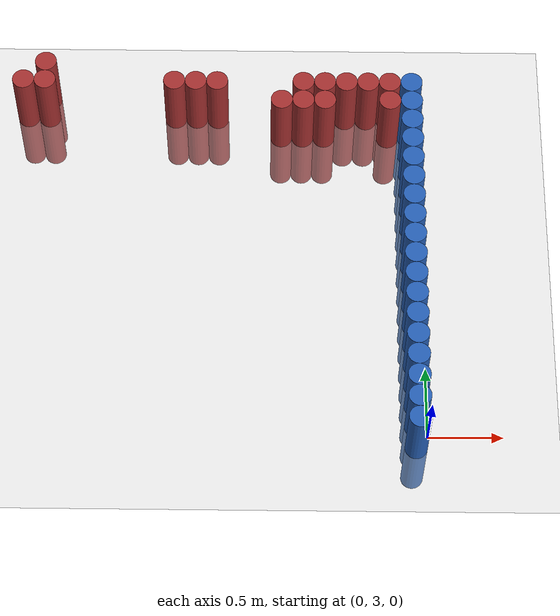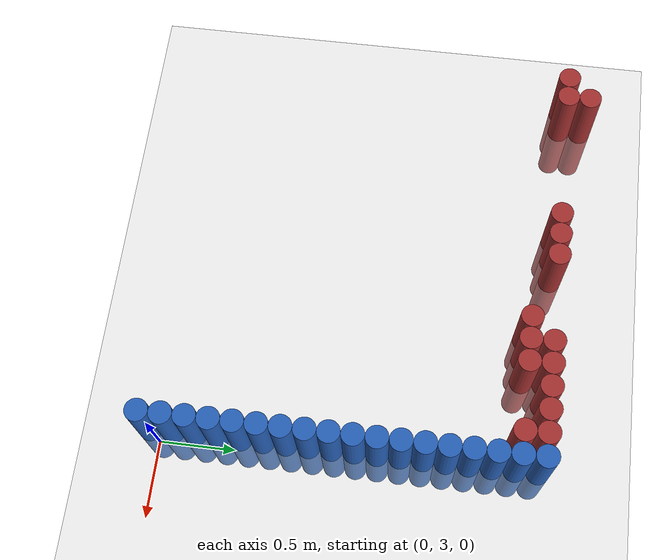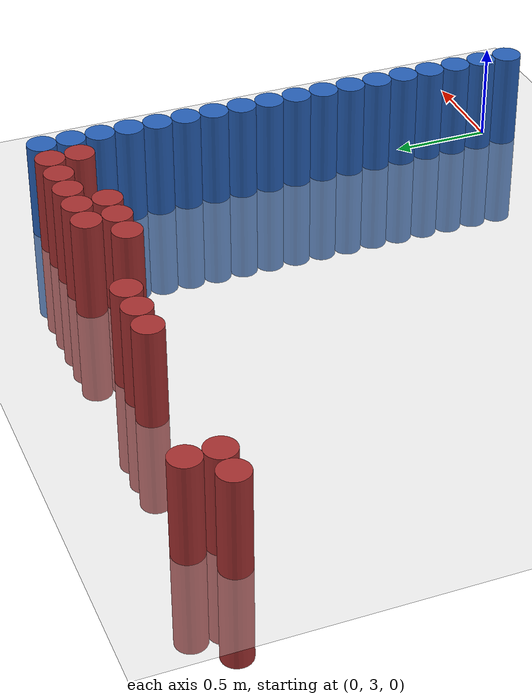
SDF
<sdf version="1.6">
 <world name="default">
  <model name="ground_plane">
   <static>1</static>
   <link name="link">
    <collision name="collision">
     <geometry><plane><normal>0 0 1</normal><size>100 100</size></plane></geometry>
     <surface><friction><ode><mu>100</mu><mu2>50</mu2></ode></friction></surface>
    </collision>
    <visual name="visual">
     <cast_shadows>0</cast_shadows>
     <geometry><plane><normal>0 0 1</normal><size>100 100</size></plane></geometry>
     <material>
      <script><uri>file://media/materials/scripts/gazebo.material</uri><name>Gazebo/Grey</name></script>
     </material>
    </visual>
   </link>
  </model>
  <model name="unit_cylinder_66">
   <static>1</static>
   <pose>-0.075000 2.925000 0.000000 0.000000 0.000000 0.000000</pose>
   <link name="link">
    <inertial>
     <mass>1</mass>
     <inertia><ixx>0.145833</ixx><ixy>0</ixy><ixz>0</ixz><iyy>0.145833</iyy><iyz>0</iyz><izz>0.125</izz></inertia>
    </inertial>
    <collision name="collision">
     <geometry><cylinder><radius>0.075000</radius><length>1</length></cylinder></geometry>
    </collision>
    <visual name="visual">
     <geometry><cylinder><radius>0.075000</radius><length>1</length></cylinder></geometry>
     <material>
      <ambient>0.152000 0.379000 0.720000 1</ambient>
      <diffuse>0.152000 0.379000 0.720000 1</diffuse>
     </material>
     <material>
      <script><name>Gazebo/Grey</name><uri>file://media/materials/scripts/gazebo.material</uri></script>
     </material>
    </visual>
    <sensor name="sensor_contact" type="contact"><contact><collision>collision</collision></contact></sensor>
   </link>
   <plugin filename="gz-sim-touchplugin-system" name="gz::sim::systems::TouchPlugin">
    <target>robot</target>
    <namespace>robot</namespace>
    <time>0.001</time>
    <enabled>true</enabled>
   </plugin>
  </model>
  <model name="unit_cylinder_68">
   <static>1</static>
   <pose>-0.075000 3.075000 0.000000 0.000000 0.000000 0.000000</pose>
   <link name="link">
    <inertial>
     <mass>1</mass>
     <inertia><ixx>0.145833</ixx><ixy>0</ixy><ixz>0</ixz><iyy>0.145833</iyy><iyz>0</iyz><izz>0.125</izz></inertia>
    </inertial>
    <collision name="collision">
     <geometry><cylinder><radius>0.075000</radius><length>1</length></cylinder></geometry>
    </collision>
    <visual name="visual">
     <geometry><cylinder><radius>0.075000</radius><length>1</length></cylinder></geometry>
     <material>
      <ambient>0.152000 0.379000 0.720000 1</ambient>
      <diffuse>0.152000 0.379000 0.720000 1</diffuse>
     </material>
     <material>
      <script><name>Gazebo/Grey</name><uri>file://media/materials/scripts/gazebo.material</uri></script>
     </material>
    </visual>
    <sensor name="sensor_contact" type="contact"><contact><collision>collision</collision></contact></sensor>
   </link>
   <plugin filename="gz-sim-touchplugin-system" name="gz::sim::systems::TouchPlugin">
    <target>robot</target>
    <namespace>robot</namespace>
    <time>0.001</time>
    <enabled>true</enabled>
   </plugin>
  </model>
  <model name="unit_cylinder_70">
   <static>1</static>
   <pose>-0.075000 3.225000 0.000000 0.000000 0.000000 0.000000</pose>
   <link name="link">
    <inertial>
     <mass>1</mass>
     <inertia><ixx>0.145833</ixx><ixy>0</ixy><ixz>0</ixz><iyy>0.145833</iyy><iyz>0</iyz><izz>0.125</izz></inertia>
    </inertial>
    <collision name="collision">
     <geometry><cylinder><radius>0.075000</radius><length>1</length></cylinder></geometry>
    </collision>
    <visual name="visual">
     <geometry><cylinder><radius>0.075000</radius><length>1</length></cylinder></geometry>
     <material>
      <ambient>0.152000 0.379000 0.720000 1</ambient>
      <diffuse>0.152000 0.379000 0.720000 1</diffuse>
     </material>
     <material>
      <script><name>Gazebo/Grey</name><uri>file://media/materials/scripts/gazebo.material</uri></script>
     </material>
    </visual>
    <sensor name="sensor_contact" type="contact"><contact><collision>collision</collision></contact></sensor>
   </link>
   <plugin filename="gz-sim-touchplugin-system" name="gz::sim::systems::TouchPlugin">
    <target>robot</target>
    <namespace>robot</namespace>
    <time>0.001</time>
    <enabled>true</enabled>
   </plugin>
  </model>
  <model name="unit_cylinder_72">
   <static>1</static>
   <pose>-0.075000 3.375000 0.000000 0.000000 0.000000 0.000000</pose>
   <link name="link">
    <inertial>
     <mass>1</mass>
     <inertia><ixx>0.145833</ixx><ixy>0</ixy><ixz>0</ixz><iyy>0.145833</iyy><iyz>0</iyz><izz>0.125</izz></inertia>
    </inertial>
    <collision name="collision">
     <geometry><cylinder><radius>0.075000</radius><length>1</length></cylinder></geometry>
    </collision>
    <visual name="visual">
     <geometry><cylinder><radius>0.075000</radius><length>1</length></cylinder></geometry>
     <material>
      <ambient>0.152000 0.379000 0.720000 1</ambient>
      <diffuse>0.152000 0.379000 0.720000 1</diffuse>
     </material>
     <material>
      <script><name>Gazebo/Grey</name><uri>file://media/materials/scripts/gazebo.material</uri></script>
     </material>
    </visual>
    <sensor name="sensor_contact" type="contact"><contact><collision>collision</collision></contact></sensor>
   </link>
   <plugin filename="gz-sim-touchplugin-system" name="gz::sim::systems::TouchPlugin">
    <target>robot</target>
    <namespace>robot</namespace>
    <time>0.001</time>
    <enabled>true</enabled>
   </plugin>
  </model>
  <model name="unit_cylinder_74">
   <static>1</static>
   <pose>-0.075000 3.525000 0.000000 0.000000 0.000000 0.000000</pose>
   <link name="link">
    <inertial>
     <mass>1</mass>
     <inertia><ixx>0.145833</ixx><ixy>0</ixy><ixz>0</ixz><iyy>0.145833</iyy><iyz>0</iyz><izz>0.125</izz></inertia>
    </inertial>
    <collision name="collision">
     <geometry><cylinder><radius>0.075000</radius><length>1</length></cylinder></geometry>
    </collision>
    <visual name="visual">
     <geometry><cylinder><radius>0.075000</radius><length>1</length></cylinder></geometry>
     <material>
      <ambient>0.152000 0.379000 0.720000 1</ambient>
      <diffuse>0.152000 0.379000 0.720000 1</diffuse>
     </material>
     <material>
      <script><name>Gazebo/Grey</name><uri>file://media/materials/scripts/gazebo.material</uri></script>
     </material>
    </visual>
    <sensor name="sensor_contact" type="contact"><contact><collision>collision</collision></contact></sensor>
   </link>
   <plugin filename="gz-sim-touchplugin-system" name="gz::sim::systems::TouchPlugin">
    <target>robot</target>
    <namespace>robot</namespace>
    <time>0.001</time>
    <enabled>true</enabled>
   </plugin>
  </model>
  <model name="unit_cylinder_76">
   <static>1</static>
   <pose>-0.075000 3.675000 0.000000 0.000000 0.000000 0.000000</pose>
   <link name="link">
    <inertial>
     <mass>1</mass>
     <inertia><ixx>0.145833</ixx><ixy>0</ixy><ixz>0</ixz><iyy>0.145833</iyy><iyz>0</iyz><izz>0.125</izz></inertia>
    </inertial>
    <collision name="collision">
     <geometry><cylinder><radius>0.075000</radius><length>1</length></cylinder></geometry>
    </collision>
    <visual name="visual">
     <geometry><cylinder><radius>0.075000</radius><length>1</length></cylinder></geometry>
     <material>
      <ambient>0.152000 0.379000 0.720000 1</ambient>
      <diffuse>0.152000 0.379000 0.720000 1</diffuse>
     </material>
     <material>
      <script><name>Gazebo/Grey</name><uri>file://media/materials/scripts/gazebo.material</uri></script>
     </material>
    </visual>
    <sensor name="sensor_contact" type="contact"><contact><collision>collision</collision></contact></sensor>
   </link>
   <plugin filename="gz-sim-touchplugin-system" name="gz::sim::systems::TouchPlugin">
    <target>robot</target>
    <namespace>robot</namespace>
    <time>0.001</time>
    <enabled>true</enabled>
   </plugin>
  </model>
  <model name="unit_cylinder_78">
   <static>1</static>
   <pose>-0.075000 3.825000 0.000000 0.000000 0.000000 0.000000</pose>
   <link name="link">
    <inertial>
     <mass>1</mass>
     <inertia><ixx>0.145833</ixx><ixy>0</ixy><ixz>0</ixz><iyy>0.145833</iyy><iyz>0</iyz><izz>0.125</izz></inertia>
    </inertial>
    <collision name="collision">
     <geometry><cylinder><radius>0.075000</radius><length>1</length></cylinder></geometry>
    </collision>
    <visual name="visual">
     <geometry><cylinder><radius>0.075000</radius><length>1</length></cylinder></geometry>
     <material>
      <ambient>0.152000 0.379000 0.720000 1</ambient>
      <diffuse>0.152000 0.379000 0.720000 1</diffuse>
     </material>
     <material>
      <script><name>Gazebo/Grey</name><uri>file://media/materials/scripts/gazebo.material</uri></script>
     </material>
    </visual>
    <sensor name="sensor_contact" type="contact"><contact><collision>collision</collision></contact></sensor>
   </link>
   <plugin filename="gz-sim-touchplugin-system" name="gz::sim::systems::TouchPlugin">
    <target>robot</target>
    <namespace>robot</namespace>
    <time>0.001</time>
    <enabled>true</enabled>
   </plugin>
  </model>
  <model name="unit_cylinder_80">
   <static>1</static>
   <pose>-0.075000 3.975000 0.000000 0.000000 0.000000 0.000000</pose>
   <link name="link">
    <inertial>
     <mass>1</mass>
     <inertia><ixx>0.145833</ixx><ixy>0</ixy><ixz>0</ixz><iyy>0.145833</iyy><iyz>0</iyz><izz>0.125</izz></inertia>
    </inertial>
    <collision name="collision">
     <geometry><cylinder><radius>0.075000</radius><length>1</length></cylinder></geometry>
    </collision>
    <visual name="visual">
     <geometry><cylinder><radius>0.075000</radius><length>1</length></cylinder></geometry>
     <material>
      <ambient>0.152000 0.379000 0.720000 1</ambient>
      <diffuse>0.152000 0.379000 0.720000 1</diffuse>
     </material>
     <material>
      <script><name>Gazebo/Grey</name><uri>file://media/materials/scripts/gazebo.material</uri></script>
     </material>
    </visual>
    <sensor name="sensor_contact" type="contact"><contact><collision>collision</collision></contact></sensor>
   </link>
   <plugin filename="gz-sim-touchplugin-system" name="gz::sim::systems::TouchPlugin">
    <target>robot</target>
    <namespace>robot</namespace>
    <time>0.001</time>
    <enabled>true</enabled>
   </plugin>
  </model>
  <model name="unit_cylinder_82">
   <static>1</static>
   <pose>-0.075000 4.125000 0.000000 0.000000 0.000000 0.000000</pose>
   <link name="link">
    <inertial>
     <mass>1</mass>
     <inertia><ixx>0.145833</ixx><ixy>0</ixy><ixz>0</ixz><iyy>0.145833</iyy><iyz>0</iyz><izz>0.125</izz></inertia>
    </inertial>
    <collision name="collision">
     <geometry><cylinder><radius>0.075000</radius><length>1</length></cylinder></geometry>
    </collision>
    <visual name="visual">
     <geometry><cylinder><radius>0.075000</radius><length>1</length></cylinder></geometry>
     <material>
      <ambient>0.152000 0.379000 0.720000 1</ambient>
      <diffuse>0.152000 0.379000 0.720000 1</diffuse>
     </material>
     <material>
      <script><name>Gazebo/Grey</name><uri>file://media/materials/scripts/gazebo.material</uri></script>
     </material>
    </visual>
    <sensor name="sensor_contact" type="contact"><contact><collision>collision</collision></contact></sensor>
   </link>
   <plugin filename="gz-sim-touchplugin-system" name="gz::sim::systems::TouchPlugin">
    <target>robot</target>
    <namespace>robot</namespace>
    <time>0.001</time>
    <enabled>true</enabled>
   </plugin>
  </model>
  <model name="unit_cylinder_84">
   <static>1</static>
   <pose>-0.075000 4.275000 0.000000 0.000000 0.000000 0.000000</pose>
   <link name="link">
    <inertial>
     <mass>1</mass>
     <inertia><ixx>0.145833</ixx><ixy>0</ixy><ixz>0</ixz><iyy>0.145833</iyy><iyz>0</iyz><izz>0.125</izz></inertia>
    </inertial>
    <collision name="collision">
     <geometry><cylinder><radius>0.075000</radius><length>1</length></cylinder></geometry>
    </collision>
    <visual name="visual">
     <geometry><cylinder><radius>0.075000</radius><length>1</length></cylinder></geometry>
     <material>
      <ambient>0.152000 0.379000 0.720000 1</ambient>
      <diffuse>0.152000 0.379000 0.720000 1</diffuse>
     </material>
     <material>
      <script><name>Gazebo/Grey</name><uri>file://media/materials/scripts/gazebo.material</uri></script>
     </material>
    </visual>
    <sensor name="sensor_contact" type="contact"><contact><collision>collision</collision></contact></sensor>
   </link>
   <plugin filename="gz-sim-touchplugin-system" name="gz::sim::systems::TouchPlugin">
    <target>robot</target>
    <namespace>robot</namespace>
    <time>0.001</time>
    <enabled>true</enabled>
   </plugin>
  </model>
  <model name="unit_cylinder_86">
   <static>1</static>
   <pose>-0.075000 4.425000 0.000000 0.000000 0.000000 0.000000</pose>
   <link name="link">
    <inertial>
     <mass>1</mass>
     <inertia><ixx>0.145833</ixx><ixy>0</ixy><ixz>0</ixz><iyy>0.145833</iyy><iyz>0</iyz><izz>0.125</izz></inertia>
    </inertial>
    <collision name="collision">
     <geometry><cylinder><radius>0.075000</radius><length>1</length></cylinder></geometry>
    </collision>
    <visual name="visual">
     <geometry><cylinder><radius>0.075000</radius><length>1</length></cylinder></geometry>
     <material>
      <ambient>0.152000 0.379000 0.720000 1</ambient>
      <diffuse>0.152000 0.379000 0.720000 1</diffuse>
     </material>
     <material>
      <script><name>Gazebo/Grey</name><uri>file://media/materials/scripts/gazebo.material</uri></script>
     </material>
    </visual>
    <sensor name="sensor_contact" type="contact"><contact><collision>collision</collision></contact></sensor>
   </link>
   <plugin filename="gz-sim-touchplugin-system" name="gz::sim::systems::TouchPlugin">
    <target>robot</target>
    <namespace>robot</namespace>
    <time>0.001</time>
    <enabled>true</enabled>
   </plugin>
  </model>
  <model name="unit_cylinder_88">
   <static>1</static>
   <pose>-0.075000 4.575000 0.000000 0.000000 0.000000 0.000000</pose>
   <link name="link">
    <inertial>
     <mass>1</mass>
     <inertia><ixx>0.145833</ixx><ixy>0</ixy><ixz>0</ixz><iyy>0.145833</iyy><iyz>0</iyz><izz>0.125</izz></inertia>
    </inertial>
    <collision name="collision">
     <geometry><cylinder><radius>0.075000</radius><length>1</length></cylinder></geometry>
    </collision>
    <visual name="visual">
     <geometry><cylinder><radius>0.075000</radius><length>1</length></cylinder></geometry>
     <material>
      <ambient>0.152000 0.379000 0.720000 1</ambient>
      <diffuse>0.152000 0.379000 0.720000 1</diffuse>
     </material>
     <material>
      <script><name>Gazebo/Grey</name><uri>file://media/materials/scripts/gazebo.material</uri></script>
     </material>
    </visual>
    <sensor name="sensor_contact" type="contact"><contact><collision>collision</collision></contact></sensor>
   </link>
   <plugin filename="gz-sim-touchplugin-system" name="gz::sim::systems::TouchPlugin">
    <target>robot</target>
    <namespace>robot</namespace>
    <time>0.001</time>
    <enabled>true</enabled>
   </plugin>
  </model>
  <model name="unit_cylinder_90">
   <static>1</static>
   <pose>-0.075000 4.725000 0.000000 0.000000 0.000000 0.000000</pose>
   <link name="link">
    <inertial>
     <mass>1</mass>
     <inertia><ixx>0.145833</ixx><ixy>0</ixy><ixz>0</ixz><iyy>0.145833</iyy><iyz>0</iyz><izz>0.125</izz></inertia>
    </inertial>
    <collision name="collision">
     <geometry><cylinder><radius>0.075000</radius><length>1</length></cylinder></geometry>
    </collision>
    <visual name="visual">
     <geometry><cylinder><radius>0.075000</radius><length>1</length></cylinder></geometry>
     <material>
      <ambient>0.152000 0.379000 0.720000 1</ambient>
      <diffuse>0.152000 0.379000 0.720000 1</diffuse>
     </material>
     <material>
      <script><name>Gazebo/Grey</name><uri>file://media/materials/scripts/gazebo.material</uri></script>
     </material>
    </visual>
    <sensor name="sensor_contact" type="contact"><contact><collision>collision</collision></contact></sensor>
   </link>
   <plugin filename="gz-sim-touchplugin-system" name="gz::sim::systems::TouchPlugin">
    <target>robot</target>
    <namespace>robot</namespace>
    <time>0.001</time>
    <enabled>true</enabled>
   </plugin>
  </model>
  <model name="unit_cylinder_92">
   <static>1</static>
   <pose>-0.075000 4.875000 0.000000 0.000000 0.000000 0.000000</pose>
   <link name="link">
    <inertial>
     <mass>1</mass>
     <inertia><ixx>0.145833</ixx><ixy>0</ixy><ixz>0</ixz><iyy>0.145833</iyy><iyz>0</iyz><izz>0.125</izz></inertia>
    </inertial>
    <collision name="collision">
     <geometry><cylinder><radius>0.075000</radius><length>1</length></cylinder></geometry>
    </collision>
    <visual name="visual">
     <geometry><cylinder><radius>0.075000</radius><length>1</length></cylinder></geometry>
     <material>
      <ambient>0.152000 0.379000 0.720000 1</ambient>
      <diffuse>0.152000 0.379000 0.720000 1</diffuse>
     </material>
     <material>
      <script><name>Gazebo/Grey</name><uri>file://media/materials/scripts/gazebo.material</uri></script>
     </material>
    </visual>
    <sensor name="sensor_contact" type="contact"><contact><collision>collision</collision></contact></sensor>
   </link>
   <plugin filename="gz-sim-touchplugin-system" name="gz::sim::systems::TouchPlugin">
    <target>robot</target>
    <namespace>robot</namespace>
    <time>0.001</time>
    <enabled>true</enabled>
   </plugin>
  </model>
  <model name="unit_cylinder_94">
   <static>1</static>
   <pose>-0.075000 5.025000 0.000000 0.000000 0.000000 0.000000</pose>
   <link name="link">
    <inertial>
     <mass>1</mass>
     <inertia><ixx>0.145833</ixx><ixy>0</ixy><ixz>0</ixz><iyy>0.145833</iyy><iyz>0</iyz><izz>0.125</izz></inertia>
    </inertial>
    <collision name="collision">
     <geometry><cylinder><radius>0.075000</radius><length>1</length></cylinder></geometry>
    </collision>
    <visual name="visual">
     <geometry><cylinder><radius>0.075000</radius><length>1</length></cylinder></geometry>
     <material>
      <ambient>0.152000 0.379000 0.720000 1</ambient>
      <diffuse>0.152000 0.379000 0.720000 1</diffuse>
     </material>
     <material>
      <script><name>Gazebo/Grey</name><uri>file://media/materials/scripts/gazebo.material</uri></script>
     </material>
    </visual>
    <sensor name="sensor_contact" type="contact"><contact><collision>collision</collision></contact></sensor>
   </link>
   <plugin filename="gz-sim-touchplugin-system" name="gz::sim::systems::TouchPlugin">
    <target>robot</target>
    <namespace>robot</namespace>
    <time>0.001</time>
    <enabled>true</enabled>
   </plugin>
  </model>
  <model name="unit_cylinder_191">
   <static>1</static>
   <pose>-2.775000 5.475000 0.000000 0.000000 0.000000 0.000000</pose>
   <link name="link">
    <inertial>
     <mass>1</mass>
     <inertia><ixx>0.145833</ixx><ixy>0</ixy><ixz>0</ixz><iyy>0.145833</iyy><iyz>0</iyz><izz>0.125</izz></inertia>
    </inertial>
    <collision name="collision">
     <geometry><cylinder><radius>0.075000</radius><length>1</length></cylinder></geometry>
    </collision>
    <visual name="visual">
     <geometry><cylinder><radius>0.075000</radius><length>1</length></cylinder></geometry>
     <material>
      <ambient>0.648000 0.192000 0.192000 1</ambient>
      <diffuse>0.648000 0.192000 0.192000 1</diffuse>
     </material>
     <material>
      <script><name>Gazebo/Grey</name><uri>file://media/materials/scripts/gazebo.material</uri></script>
     </material>
    </visual>
    <sensor name="sensor_contact" type="contact"><contact><collision>collision</collision></contact></sensor>
   </link>
   <plugin filename="gz-sim-touchplugin-system" name="gz::sim::systems::TouchPlugin">
    <target>robot</target>
    <namespace>robot</namespace>
    <time>0.001</time>
    <enabled>true</enabled>
   </plugin>
  </model>
  <model name="unit_cylinder_192">
   <static>1</static>
   <pose>-2.625000 5.475000 0.000000 0.000000 0.000000 0.000000</pose>
   <link name="link">
    <inertial>
     <mass>1</mass>
     <inertia><ixx>0.145833</ixx><ixy>0</ixy><ixz>0</ixz><iyy>0.145833</iyy><iyz>0</iyz><izz>0.125</izz></inertia>
    </inertial>
    <collision name="collision">
     <geometry><cylinder><radius>0.075000</radius><length>1</length></cylinder></geometry>
    </collision>
    <visual name="visual">
     <geometry><cylinder><radius>0.075000</radius><length>1</length></cylinder></geometry>
     <material>
      <ambient>0.648000 0.192000 0.192000 1</ambient>
      <diffuse>0.648000 0.192000 0.192000 1</diffuse>
     </material>
     <material>
      <script><name>Gazebo/Grey</name><uri>file://media/materials/scripts/gazebo.material</uri></script>
     </material>
    </visual>
    <sensor name="sensor_contact" type="contact"><contact><collision>collision</collision></contact></sensor>
   </link>
   <plugin filename="gz-sim-touchplugin-system" name="gz::sim::systems::TouchPlugin">
    <target>robot</target>
    <namespace>robot</namespace>
    <time>0.001</time>
    <enabled>true</enabled>
   </plugin>
  </model>
  <model name="unit_cylinder_193">
   <static>1</static>
   <pose>-2.625000 5.625000 0.000000 0.000000 0.000000 0.000000</pose>
   <link name="link">
    <inertial>
     <mass>1</mass>
     <inertia><ixx>0.145833</ixx><ixy>0</ixy><ixz>0</ixz><iyy>0.145833</iyy><iyz>0</iyz><izz>0.125</izz></inertia>
    </inertial>
    <collision name="collision">
     <geometry><cylinder><radius>0.075000</radius><length>1</length></cylinder></geometry>
    </collision>
    <visual name="visual">
     <geometry><cylinder><radius>0.075000</radius><length>1</length></cylinder></geometry>
     <material>
      <ambient>0.648000 0.192000 0.192000 1</ambient>
      <diffuse>0.648000 0.192000 0.192000 1</diffuse>
     </material>
     <material>
      <script><name>Gazebo/Grey</name><uri>file://media/materials/scripts/gazebo.material</uri></script>
     </material>
    </visual>
    <sensor name="sensor_contact" type="contact"><contact><collision>collision</collision></contact></sensor>
   </link>
   <plugin filename="gz-sim-touchplugin-system" name="gz::sim::systems::TouchPlugin">
    <target>robot</target>
    <namespace>robot</namespace>
    <time>0.001</time>
    <enabled>true</enabled>
   </plugin>
  </model>
  <model name="unit_cylinder_217">
   <static>1</static>
   <pose>-1.725000 5.475000 0.000000 0.000000 0.000000 0.000000</pose>
   <link name="link">
    <inertial>
     <mass>1</mass>
     <inertia><ixx>0.145833</ixx><ixy>0</ixy><ixz>0</ixz><iyy>0.145833</iyy><iyz>0</iyz><izz>0.125</izz></inertia>
    </inertial>
    <collision name="collision">
     <geometry><cylinder><radius>0.075000</radius><length>1</length></cylinder></geometry>
    </collision>
    <visual name="visual">
     <geometry><cylinder><radius>0.075000</radius><length>1</length></cylinder></geometry>
     <material>
      <ambient>0.648000 0.192000 0.192000 1</ambient>
      <diffuse>0.648000 0.192000 0.192000 1</diffuse>
     </material>
     <material>
      <script><name>Gazebo/Grey</name><uri>file://media/materials/scripts/gazebo.material</uri></script>
     </material>
    </visual>
    <sensor name="sensor_contact" type="contact"><contact><collision>collision</collision></contact></sensor>
   </link>
   <plugin filename="gz-sim-touchplugin-system" name="gz::sim::systems::TouchPlugin">
    <target>robot</target>
    <namespace>robot</namespace>
    <time>0.001</time>
    <enabled>true</enabled>
   </plugin>
  </model>
  <model name="unit_cylinder_218">
   <static>1</static>
   <pose>-1.575000 5.475000 0.000000 0.000000 0.000000 0.000000</pose>
   <link name="link">
    <inertial>
     <mass>1</mass>
     <inertia><ixx>0.145833</ixx><ixy>0</ixy><ixz>0</ixz><iyy>0.145833</iyy><iyz>0</iyz><izz>0.125</izz></inertia>
    </inertial>
    <collision name="collision">
     <geometry><cylinder><radius>0.075000</radius><length>1</length></cylinder></geometry>
    </collision>
    <visual name="visual">
     <geometry><cylinder><radius>0.075000</radius><length>1</length></cylinder></geometry>
     <material>
      <ambient>0.648000 0.192000 0.192000 1</ambient>
      <diffuse>0.648000 0.192000 0.192000 1</diffuse>
     </material>
     <material>
      <script><name>Gazebo/Grey</name><uri>file://media/materials/scripts/gazebo.material</uri></script>
     </material>
    </visual>
    <sensor name="sensor_contact" type="contact"><contact><collision>collision</collision></contact></sensor>
   </link>
   <plugin filename="gz-sim-touchplugin-system" name="gz::sim::systems::TouchPlugin">
    <target>robot</target>
    <namespace>robot</namespace>
    <time>0.001</time>
    <enabled>true</enabled>
   </plugin>
  </model>
  <model name="unit_cylinder_220">
   <static>1</static>
   <pose>-1.425000 5.475000 0.000000 0.000000 0.000000 0.000000</pose>
   <link name="link">
    <inertial>
     <mass>1</mass>
     <inertia><ixx>0.145833</ixx><ixy>0</ixy><ixz>0</ixz><iyy>0.145833</iyy><iyz>0</iyz><izz>0.125</izz></inertia>
    </inertial>
    <collision name="collision">
     <geometry><cylinder><radius>0.075000</radius><length>1</length></cylinder></geometry>
    </collision>
    <visual name="visual">
     <geometry><cylinder><radius>0.075000</radius><length>1</length></cylinder></geometry>
     <material>
      <ambient>0.648000 0.192000 0.192000 1</ambient>
      <diffuse>0.648000 0.192000 0.192000 1</diffuse>
     </material>
     <material>
      <script><name>Gazebo/Grey</name><uri>file://media/materials/scripts/gazebo.material</uri></script>
     </material>
    </visual>
    <sensor name="sensor_contact" type="contact"><contact><collision>collision</collision></contact></sensor>
   </link>
   <plugin filename="gz-sim-touchplugin-system" name="gz::sim::systems::TouchPlugin">
    <target>robot</target>
    <namespace>robot</namespace>
    <time>0.001</time>
    <enabled>true</enabled>
   </plugin>
  </model>
  <model name="unit_cylinder_226">
   <static>1</static>
   <pose>-0.975000 5.325000 0.000000 0.000000 0.000000 0.000000</pose>
   <link name="link">
    <inertial>
     <mass>1</mass>
     <inertia><ixx>0.145833</ixx><ixy>0</ixy><ixz>0</ixz><iyy>0.145833</iyy><iyz>0</iyz><izz>0.125</izz></inertia>
    </inertial>
    <collision name="collision">
     <geometry><cylinder><radius>0.075000</radius><length>1</length></cylinder></geometry>
    </collision>
    <visual name="visual">
     <geometry><cylinder><radius>0.075000</radius><length>1</length></cylinder></geometry>
     <material>
      <ambient>0.648000 0.192000 0.192000 1</ambient>
      <diffuse>0.648000 0.192000 0.192000 1</diffuse>
     </material>
     <material>
      <script><name>Gazebo/Grey</name><uri>file://media/materials/scripts/gazebo.material</uri></script>
     </material>
    </visual>
    <sensor name="sensor_contact" type="contact"><contact><collision>collision</collision></contact></sensor>
   </link>
   <plugin filename="gz-sim-touchplugin-system" name="gz::sim::systems::TouchPlugin">
    <target>robot</target>
    <namespace>robot</namespace>
    <time>0.001</time>
    <enabled>true</enabled>
   </plugin>
  </model>
  <model name="unit_cylinder_233">
   <static>1</static>
   <pose>-0.825000 5.325000 0.000000 0.000000 0.000000 0.000000</pose>
   <link name="link">
    <inertial>
     <mass>1</mass>
     <inertia><ixx>0.145833</ixx><ixy>0</ixy><ixz>0</ixz><iyy>0.145833</iyy><iyz>0</iyz><izz>0.125</izz></inertia>
    </inertial>
    <collision name="collision">
     <geometry><cylinder><radius>0.075000</radius><length>1</length></cylinder></geometry>
    </collision>
    <visual name="visual">
     <geometry><cylinder><radius>0.075000</radius><length>1</length></cylinder></geometry>
     <material>
      <ambient>0.648000 0.192000 0.192000 1</ambient>
      <diffuse>0.648000 0.192000 0.192000 1</diffuse>
     </material>
     <material>
      <script><name>Gazebo/Grey</name><uri>file://media/materials/scripts/gazebo.material</uri></script>
     </material>
    </visual>
    <sensor name="sensor_contact" type="contact"><contact><collision>collision</collision></contact></sensor>
   </link>
   <plugin filename="gz-sim-touchplugin-system" name="gz::sim::systems::TouchPlugin">
    <target>robot</target>
    <namespace>robot</namespace>
    <time>0.001</time>
    <enabled>true</enabled>
   </plugin>
  </model>
  <model name="unit_cylinder_234">
   <static>1</static>
   <pose>-0.825000 5.475000 0.000000 0.000000 0.000000 0.000000</pose>
   <link name="link">
    <inertial>
     <mass>1</mass>
     <inertia><ixx>0.145833</ixx><ixy>0</ixy><ixz>0</ixz><iyy>0.145833</iyy><iyz>0</iyz><izz>0.125</izz></inertia>
    </inertial>
    <collision name="collision">
     <geometry><cylinder><radius>0.075000</radius><length>1</length></cylinder></geometry>
    </collision>
    <visual name="visual">
     <geometry><cylinder><radius>0.075000</radius><length>1</length></cylinder></geometry>
     <material>
      <ambient>0.648000 0.192000 0.192000 1</ambient>
      <diffuse>0.648000 0.192000 0.192000 1</diffuse>
     </material>
     <material>
      <script><name>Gazebo/Grey</name><uri>file://media/materials/scripts/gazebo.material</uri></script>
     </material>
    </visual>
    <sensor name="sensor_contact" type="contact"><contact><collision>collision</collision></contact></sensor>
   </link>
   <plugin filename="gz-sim-touchplugin-system" name="gz::sim::systems::TouchPlugin">
    <target>robot</target>
    <namespace>robot</namespace>
    <time>0.001</time>
    <enabled>true</enabled>
   </plugin>
  </model>
  <model name="unit_cylinder_244">
   <static>1</static>
   <pose>-0.675000 5.325000 0.000000 0.000000 0.000000 0.000000</pose>
   <link name="link">
    <inertial>
     <mass>1</mass>
     <inertia><ixx>0.145833</ixx><ixy>0</ixy><ixz>0</ixz><iyy>0.145833</iyy><iyz>0</iyz><izz>0.125</izz></inertia>
    </inertial>
    <collision name="collision">
     <geometry><cylinder><radius>0.075000</radius><length>1</length></cylinder></geometry>
    </collision>
    <visual name="visual">
     <geometry><cylinder><radius>0.075000</radius><length>1</length></cylinder></geometry>
     <material>
      <ambient>0.648000 0.192000 0.192000 1</ambient>
      <diffuse>0.648000 0.192000 0.192000 1</diffuse>
     </material>
     <material>
      <script><name>Gazebo/Grey</name><uri>file://media/materials/scripts/gazebo.material</uri></script>
     </material>
    </visual>
    <sensor name="sensor_contact" type="contact"><contact><collision>collision</collision></contact></sensor>
   </link>
   <plugin filename="gz-sim-touchplugin-system" name="gz::sim::systems::TouchPlugin">
    <target>robot</target>
    <namespace>robot</namespace>
    <time>0.001</time>
    <enabled>true</enabled>
   </plugin>
  </model>
  <model name="unit_cylinder_245">
   <static>1</static>
   <pose>-0.675000 5.475000 0.000000 0.000000 0.000000 0.000000</pose>
   <link name="link">
    <inertial>
     <mass>1</mass>
     <inertia><ixx>0.145833</ixx><ixy>0</ixy><ixz>0</ixz><iyy>0.145833</iyy><iyz>0</iyz><izz>0.125</izz></inertia>
    </inertial>
    <collision name="collision">
     <geometry><cylinder><radius>0.075000</radius><length>1</length></cylinder></geometry>
    </collision>
    <visual name="visual">
     <geometry><cylinder><radius>0.075000</radius><length>1</length></cylinder></geometry>
     <material>
      <ambient>0.648000 0.192000 0.192000 1</ambient>
      <diffuse>0.648000 0.192000 0.192000 1</diffuse>
     </material>
     <material>
      <script><name>Gazebo/Grey</name><uri>file://media/materials/scripts/gazebo.material</uri></script>
     </material>
    </visual>
    <sensor name="sensor_contact" type="contact"><contact><collision>collision</collision></contact></sensor>
   </link>
   <plugin filename="gz-sim-touchplugin-system" name="gz::sim::systems::TouchPlugin">
    <target>robot</target>
    <namespace>robot</namespace>
    <time>0.001</time>
    <enabled>true</enabled>
   </plugin>
  </model>
  <model name="unit_cylinder_257">
   <static>1</static>
   <pose>-0.525000 5.475000 0.000000 0.000000 0.000000 0.000000</pose>
   <link name="link">
    <inertial>
     <mass>1</mass>
     <inertia><ixx>0.145833</ixx><ixy>0</ixy><ixz>0</ixz><iyy>0.145833</iyy><iyz>0</iyz><izz>0.125</izz></inertia>
    </inertial>
    <collision name="collision">
     <geometry><cylinder><radius>0.075000</radius><length>1</length></cylinder></geometry>
    </collision>
    <visual name="visual">
     <geometry><cylinder><radius>0.075000</radius><length>1</length></cylinder></geometry>
     <material>
      <ambient>0.648000 0.192000 0.192000 1</ambient>
      <diffuse>0.648000 0.192000 0.192000 1</diffuse>
     </material>
     <material>
      <script><name>Gazebo/Grey</name><uri>file://media/materials/scripts/gazebo.material</uri></script>
     </material>
    </visual>
    <sensor name="sensor_contact" type="contact"><contact><collision>collision</collision></contact></sensor>
   </link>
   <plugin filename="gz-sim-touchplugin-system" name="gz::sim::systems::TouchPlugin">
    <target>robot</target>
    <namespace>robot</namespace>
    <time>0.001</time>
    <enabled>true</enabled>
   </plugin>
  </model>
  <model name="unit_cylinder_266">
   <static>1</static>
   <pose>-0.375000 5.475000 0.000000 0.000000 0.000000 0.000000</pose>
   <link name="link">
    <inertial>
     <mass>1</mass>
     <inertia><ixx>0.145833</ixx><ixy>0</ixy><ixz>0</ixz><iyy>0.145833</iyy><iyz>0</iyz><izz>0.125</izz></inertia>
    </inertial>
    <collision name="collision">
     <geometry><cylinder><radius>0.075000</radius><length>1</length></cylinder></geometry>
    </collision>
    <visual name="visual">
     <geometry><cylinder><radius>0.075000</radius><length>1</length></cylinder></geometry>
     <material>
      <ambient>0.648000 0.192000 0.192000 1</ambient>
      <diffuse>0.648000 0.192000 0.192000 1</diffuse>
     </material>
     <material>
      <script><name>Gazebo/Grey</name><uri>file://media/materials/scripts/gazebo.material</uri></script>
     </material>
    </visual>
    <sensor name="sensor_contact" type="contact"><contact><collision>collision</collision></contact></sensor>
   </link>
   <plugin filename="gz-sim-touchplugin-system" name="gz::sim::systems::TouchPlugin">
    <target>robot</target>
    <namespace>robot</namespace>
    <time>0.001</time>
    <enabled>true</enabled>
   </plugin>
  </model>
  <model name="unit_cylinder_281">
   <static>1</static>
   <pose>-0.225000 5.325000 0.000000 0.000000 0.000000 0.000000</pose>
   <link name="link">
    <inertial>
     <mass>1</mass>
     <inertia><ixx>0.145833</ixx><ixy>0</ixy><ixz>0</ixz><iyy>0.145833</iyy><iyz>0</iyz><izz>0.125</izz></inertia>
    </inertial>
    <collision name="collision">
     <geometry><cylinder><radius>0.075000</radius><length>1</length></cylinder></geometry>
    </collision>
    <visual name="visual">
     <geometry><cylinder><radius>0.075000</radius><length>1</length></cylinder></geometry>
     <material>
      <ambient>0.648000 0.192000 0.192000 1</ambient>
      <diffuse>0.648000 0.192000 0.192000 1</diffuse>
     </material>
     <material>
      <script><name>Gazebo/Grey</name><uri>file://media/materials/scripts/gazebo.material</uri></script>
     </material>
    </visual>
    <sensor name="sensor_contact" type="contact"><contact><collision>collision</collision></contact></sensor>
   </link>
   <plugin filename="gz-sim-touchplugin-system" name="gz::sim::systems::TouchPlugin">
    <target>robot</target>
    <namespace>robot</namespace>
    <time>0.001</time>
    <enabled>true</enabled>
   </plugin>
  </model>
  <model name="unit_cylinder_282">
   <static>1</static>
   <pose>-0.225000 5.475000 0.000000 0.000000 0.000000 0.000000</pose>
   <link name="link">
    <inertial>
     <mass>1</mass>
     <inertia><ixx>0.145833</ixx><ixy>0</ixy><ixz>0</ixz><iyy>0.145833</iyy><iyz>0</iyz><izz>0.125</izz></inertia>
    </inertial>
    <collision name="collision">
     <geometry><cylinder><radius>0.075000</radius><length>1</length></cylinder></geometry>
    </collision>
    <visual name="visual">
     <geometry><cylinder><radius>0.075000</radius><length>1</length></cylinder></geometry>
     <material>
      <ambient>0.648000 0.192000 0.192000 1</ambient>
      <diffuse>0.648000 0.192000 0.192000 1</diffuse>
     </material>
     <material>
      <script><name>Gazebo/Grey</name><uri>file://media/materials/scripts/gazebo.material</uri></script>
     </material>
    </visual>
    <sensor name="sensor_contact" type="contact"><contact><collision>collision</collision></contact></sensor>
   </link>
   <plugin filename="gz-sim-touchplugin-system" name="gz::sim::systems::TouchPlugin">
    <target>robot</target>
    <namespace>robot</namespace>
    <time>0.001</time>
    <enabled>true</enabled>
   </plugin>
  </model>
  <model name="unit_cylinder_295">
   <static>1</static>
   <pose>-0.075000 5.175000 0.000000 0.000000 0.000000 0.000000</pose>
   <link name="link">
    <inertial>
     <mass>1</mass>
     <inertia><ixx>0.145833</ixx><ixy>0</ixy><ixz>0</ixz><iyy>0.145833</iyy><iyz>0</iyz><izz>0.125</izz></inertia>
    </inertial>
    <collision name="collision">
     <geometry><cylinder><radius>0.075000</radius><length>1</length></cylinder></geometry>
    </collision>
    <visual name="visual">
     <geometry><cylinder><radius>0.075000</radius><length>1</length></cylinder></geometry>
     <material>
      <ambient>0.152000 0.379000 0.720000 1</ambient>
      <diffuse>0.152000 0.379000 0.720000 1</diffuse>
     </material>
     <material>
      <script><name>Gazebo/Grey</name><uri>file://media/materials/scripts/gazebo.material</uri></script>
     </material>
    </visual>
    <sensor name="sensor_contact" type="contact"><contact><collision>collision</collision></contact></sensor>
   </link>
   <plugin filename="gz-sim-touchplugin-system" name="gz::sim::systems::TouchPlugin">
    <target>robot</target>
    <namespace>robot</namespace>
    <time>0.001</time>
    <enabled>true</enabled>
   </plugin>
  </model>
  <model name="unit_cylinder_296">
   <static>1</static>
   <pose>-0.075000 5.325000 0.000000 0.000000 0.000000 0.000000</pose>
   <link name="link">
    <inertial>
     <mass>1</mass>
     <inertia><ixx>0.145833</ixx><ixy>0</ixy><ixz>0</ixz><iyy>0.145833</iyy><iyz>0</iyz><izz>0.125</izz></inertia>
    </inertial>
    <collision name="collision">
     <geometry><cylinder><radius>0.075000</radius><length>1</length></cylinder></geometry>
    </collision>
    <visual name="visual">
     <geometry><cylinder><radius>0.075000</radius><length>1</length></cylinder></geometry>
     <material>
      <ambient>0.152000 0.379000 0.720000 1</ambient>
      <diffuse>0.152000 0.379000 0.720000 1</diffuse>
     </material>
     <material>
      <script><name>Gazebo/Grey</name><uri>file://media/materials/scripts/gazebo.material</uri></script>
     </material>
    </visual>
    <sensor name="sensor_contact" type="contact"><contact><collision>collision</collision></contact></sensor>
   </link>
   <plugin filename="gz-sim-touchplugin-system" name="gz::sim::systems::TouchPlugin">
    <target>robot</target>
    <namespace>robot</namespace>
    <time>0.001</time>
    <enabled>true</enabled>
   </plugin>
  </model>
  <model name="unit_cylinder_297">
   <static>1</static>
   <pose>-0.075000 5.475000 0.000000 0.000000 0.000000 0.000000</pose>
   <link name="link">
    <inertial>
     <mass>1</mass>
     <inertia><ixx>0.145833</ixx><ixy>0</ixy><ixz>0</ixz><iyy>0.145833</iyy><iyz>0</iyz><izz>0.125</izz></inertia>
    </inertial>
    <collision name="collision">
     <geometry><cylinder><radius>0.075000</radius><length>1</length></cylinder></geometry>
    </collision>
    <visual name="visual">
     <geometry><cylinder><radius>0.075000</radius><length>1</length></cylinder></geometry>
     <material>
      <ambient>0.152000 0.379000 0.720000 1</ambient>
      <diffuse>0.152000 0.379000 0.720000 1</diffuse>
     </material>
     <material>
      <script><name>Gazebo/Grey</name><uri>file://media/materials/scripts/gazebo.material</uri></script>
     </material>
    </visual>
    <sensor name="sensor_contact" type="contact"><contact><collision>collision</collision></contact></sensor>
   </link>
   <plugin filename="gz-sim-touchplugin-system" name="gz::sim::systems::TouchPlugin">
    <target>robot</target>
    <namespace>robot</namespace>
    <time>0.001</time>
    <enabled>true</enabled>
   </plugin>
  </model>
 </world>
</sdf>
